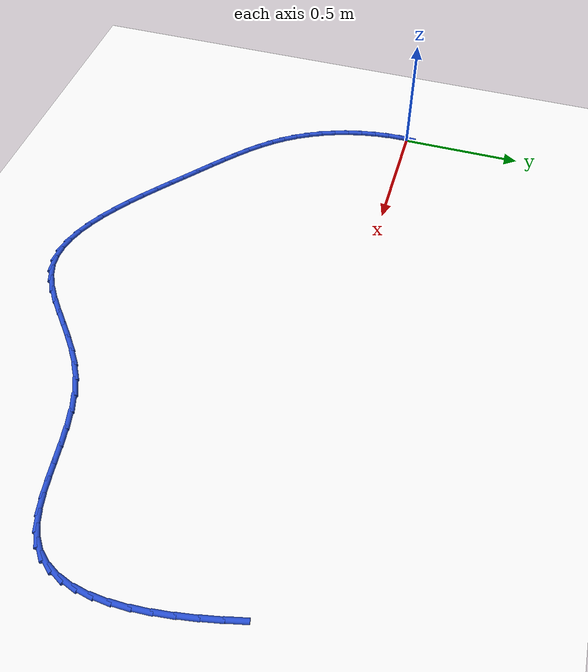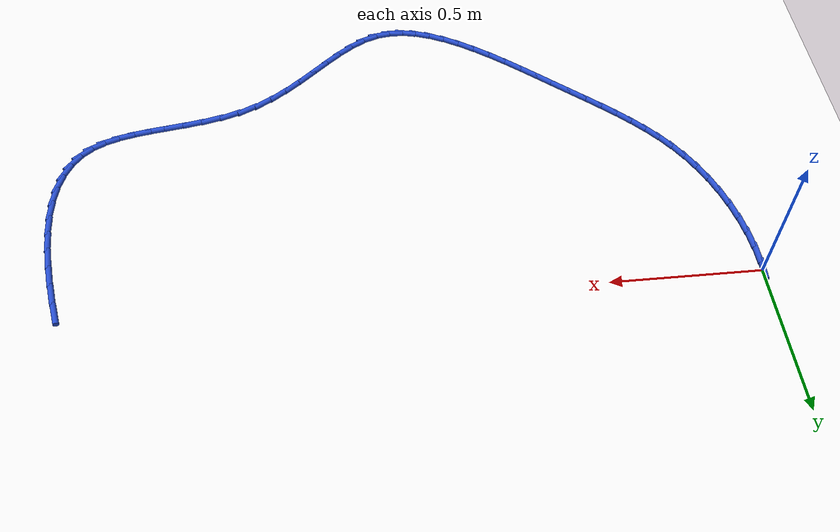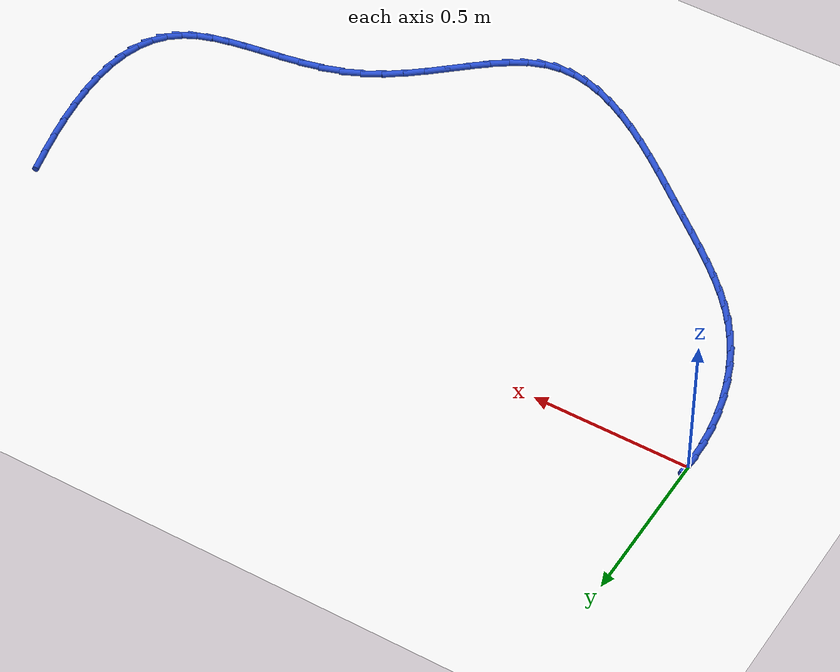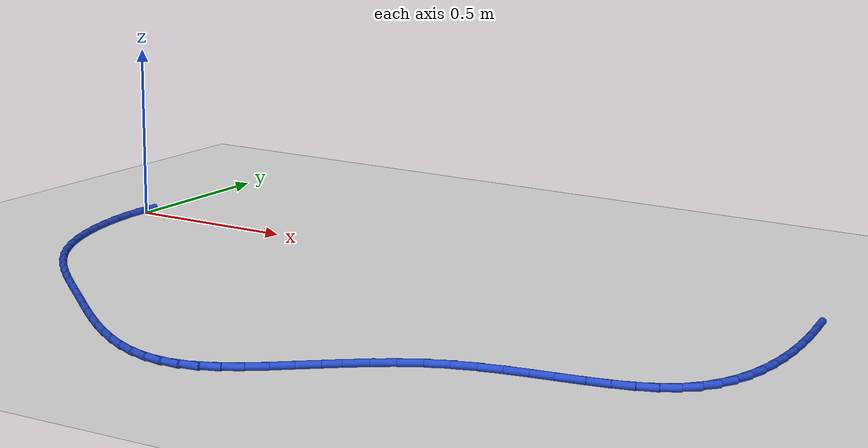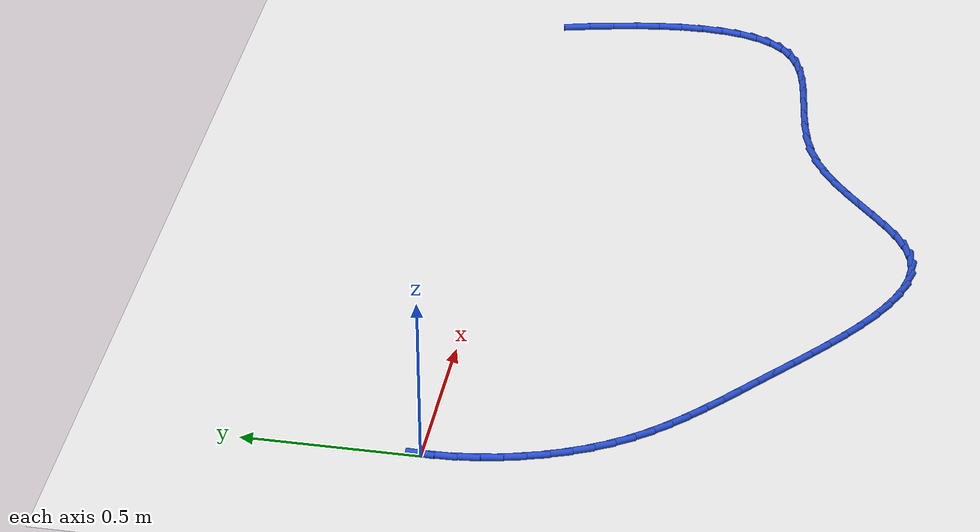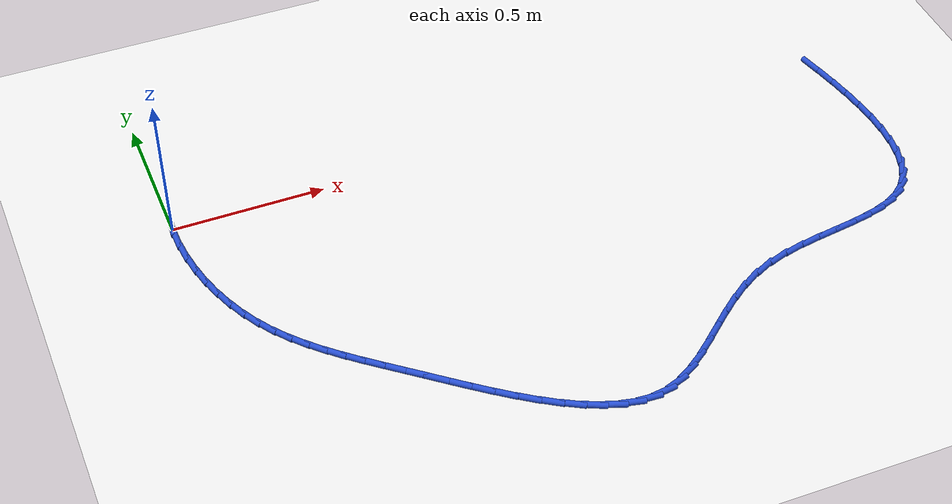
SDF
<sdf version="1.6">
 <world name="default">
  <model name="ground_plane">
   <static>1</static>
   <link name="link">
    <collision name="collision">
     <geometry><plane><normal>0 0 1</normal><size>100 100</size></plane></geometry>
     <surface><friction><ode><mu>100</mu><mu2>50</mu2></ode></friction></surface>
    </collision>
    <visual name="visual">
     <cast_shadows>0</cast_shadows>
     <geometry><plane><normal>0 0 1</normal><size>100 100</size></plane></geometry>
     <material>
      <script><uri>file://media/materials/scripts/gazebo.material</uri><name>Gazebo/WhiteGlow</name></script>
     </material>
    </visual>
   </link>
  </model>
  <model name="line">
   <link name="link_60">
    <pose>2.2438673846446573 -0.038703208460653206 0.01 0 1.57 -1.341991703126801</pose>
    <collision name="collision">
     <geometry><cylinder><radius>0.01</radius><length>0.08</length></cylinder></geometry>
    </collision>
    <visual name="visual">
     <material>
      <script><name>Gazebo/Blue</name><uri>file://media/materials/scripts/gazebo.material</uri></script>
     </material>
     <geometry><cylinder><radius>0.01</radius><length>0.08</length></cylinder></geometry>
    </visual>
   </link>
   <link name="link_61">
    <pose>2.2605468077617537 -0.110324740114451 0.01 0 1.57 -1.3713619405423163</pose>
    <collision name="collision">
     <geometry><cylinder><radius>0.01</radius><length>0.08</length></cylinder></geometry>
    </collision>
    <visual name="visual">
     <material>
      <script><name>Gazebo/Blue</name><uri>file://media/materials/scripts/gazebo.material</uri></script>
     </material>
     <geometry><cylinder><radius>0.01</radius><length>0.08</length></cylinder></geometry>
    </visual>
   </link>
   <link name="link_62">
    <pose>2.2749777125026394 -0.18172200749098166 0.01 0 1.57 -1.4070645537674633</pose>
    <collision name="collision">
     <geometry><cylinder><radius>0.01</radius><length>0.08</length></cylinder></geometry>
    </collision>
    <visual name="visual">
     <material>
      <script><name>Gazebo/Blue</name><uri>file://media/materials/scripts/gazebo.material</uri></script>
     </material>
     <geometry><cylinder><radius>0.01</radius><length>0.08</length></cylinder></geometry>
    </visual>
   </link>
   <link name="link_63">
    <pose>2.286617403558694 -0.2521756026166581 0.01 0 1.57 -1.4506377503673564</pose>
    <collision name="collision">
     <geometry><cylinder><radius>0.01</radius><length>0.08</length></cylinder></geometry>
    </collision>
    <visual name="visual">
     <material>
      <script><name>Gazebo/Blue</name><uri>file://media/materials/scripts/gazebo.material</uri></script>
     </material>
     <geometry><cylinder><radius>0.01</radius><length>0.08</length></cylinder></geometry>
    </visual>
   </link>
   <link name="link_64">
    <pose>2.294923185621299 -0.3209661175178902 0.01 0 1.57 -1.5041985395946258</pose>
    <collision name="collision">
     <geometry><cylinder><radius>0.01</radius><length>0.08</length></cylinder></geometry>
    </collision>
    <visual name="visual">
     <material>
      <script><name>Gazebo/Blue</name><uri>file://media/materials/scripts/gazebo.material</uri></script>
     </material>
     <geometry><cylinder><radius>0.01</radius><length>0.08</length></cylinder></geometry>
    </visual>
   </link>
   <link name="link_65">
    <pose>2.2993523633818356 -0.3873741442210909 0.01 0 1.57 -1.5706402889880422</pose>
    <collision name="collision">
     <geometry><cylinder><radius>0.01</radius><length>0.08</length></cylinder></geometry>
    </collision>
    <visual name="visual">
     <material>
      <script><name>Gazebo/Blue</name><uri>file://media/materials/scripts/gazebo.material</uri></script>
     </material>
     <geometry><cylinder><radius>0.01</radius><length>0.08</length></cylinder></geometry>
    </visual>
   </link>
   <link name="link_66">
    <pose>2.2993622415316843 -0.4506802747526728 0.01 0 1.57 1.4877377710754096</pose>
    <collision name="collision">
     <geometry><cylinder><radius>0.01</radius><length>0.08</length></cylinder></geometry>
    </collision>
    <visual name="visual">
     <material>
      <script><name>Gazebo/Blue</name><uri>file://media/materials/scripts/gazebo.material</uri></script>
     </material>
     <geometry><cylinder><radius>0.01</radius><length>0.08</length></cylinder></geometry>
    </visual>
   </link>
   <link name="link_67">
    <pose>2.2944101247622246 -0.510165101139046 0.01 0 1.57 1.3827283024979578</pose>
    <collision name="collision">
     <geometry><cylinder><radius>0.01</radius><length>0.08</length></cylinder></geometry>
    </collision>
    <visual name="visual">
     <material>
      <script><name>Gazebo/Blue</name><uri>file://media/materials/scripts/gazebo.material</uri></script>
     </material>
     <geometry><cylinder><radius>0.01</radius><length>0.08</length></cylinder></geometry>
    </visual>
   </link>
   <link name="link_68">
    <pose>2.2839533177648397 -0.565109215406623 0.01 0 1.57 1.2500811702750374</pose>
    <collision name="collision">
     <geometry><cylinder><radius>0.01</radius><length>0.08</length></cylinder></geometry>
    </collision>
    <visual name="visual">
     <material>
      <script><name>Gazebo/Blue</name><uri>file://media/materials/scripts/gazebo.material</uri></script>
     </material>
     <geometry><cylinder><radius>0.01</radius><length>0.08</length></cylinder></geometry>
    </visual>
   </link>
   <link name="link_69">
    <pose>2.267449125230909 -0.6147932095818162 0.01 0 1.57 1.0846727875327875</pose>
    <collision name="collision">
     <geometry><cylinder><radius>0.01</radius><length>0.08</length></cylinder></geometry>
    </collision>
    <visual name="visual">
     <material>
      <script><name>Gazebo/Blue</name><uri>file://media/materials/scripts/gazebo.material</uri></script>
     </material>
     <geometry><cylinder><radius>0.01</radius><length>0.08</length></cylinder></geometry>
    </visual>
   </link>
   <link name="link_70">
    <pose>2.244354851851813 -0.6584976756910375 0.01 0 1.57 0.8858799835605161</pose>
    <collision name="collision">
     <geometry><cylinder><radius>0.01</radius><length>0.08</length></cylinder></geometry>
    </collision>
    <visual name="visual">
     <material>
      <script><name>Gazebo/Blue</name><uri>file://media/materials/scripts/gazebo.material</uri></script>
     </material>
     <geometry><cylinder><radius>0.01</radius><length>0.08</length></cylinder></geometry>
    </visual>
   </link>
   <link name="link_71">
    <pose>2.214127802318934 -0.6955032057606977 0.01 0 1.57 0.6633664856925773</pose>
    <collision name="collision">
     <geometry><cylinder><radius>0.01</radius><length>0.08</length></cylinder></geometry>
    </collision>
    <visual name="visual">
     <material>
      <script><name>Gazebo/Blue</name><uri>file://media/materials/scripts/gazebo.material</uri></script>
     </material>
     <geometry><cylinder><radius>0.01</radius><length>0.08</length></cylinder></geometry>
    </visual>
   </link>
   <link name="link_72">
    <pose>2.1762415558418184 -0.7251118118311726 0.01 0 1.57 0.4594481789931547</pose>
    <collision name="collision">
     <geometry><cylinder><radius>0.01</radius><length>0.08</length></cylinder></geometry>
    </collision>
    <visual name="visual">
     <material>
      <script><name>Gazebo/Blue</name><uri>file://media/materials/scripts/gazebo.material</uri></script>
     </material>
     <geometry><cylinder><radius>0.01</radius><length>0.08</length></cylinder></geometry>
    </visual>
   </link>
   <link name="link_73">
    <pose>2.1308770069198135 -0.7475564522988926 0.01 0 1.57 0.3139066812539006</pose>
    <collision name="collision">
     <geometry><cylinder><radius>0.01</radius><length>0.08</length></cylinder></geometry>
    </collision>
    <visual name="visual">
     <material>
      <script><name>Gazebo/Blue</name><uri>file://media/materials/scripts/gazebo.material</uri></script>
     </material>
     <geometry><cylinder><radius>0.01</radius><length>0.08</length></cylinder></geometry>
    </visual>
   </link>
   <link name="link_74">
    <pose>2.079179555245739 -0.7643395372577334 0.01 0 1.57 0.2201679152603716</pose>
    <collision name="collision">
     <geometry><cylinder><radius>0.01</radius><length>0.08</length></cylinder></geometry>
    </collision>
    <visual name="visual">
     <material>
      <script><name>Gazebo/Blue</name><uri>file://media/materials/scripts/gazebo.material</uri></script>
     </material>
     <geometry><cylinder><radius>0.01</radius><length>0.08</length></cylinder></geometry>
    </visual>
   </link>
   <link name="link_75">
    <pose>2.022363868989246 -0.7770546458134955 0.01 0 1.57 0.16708433866745412</pose>
    <collision name="collision">
     <geometry><cylinder><radius>0.01</radius><length>0.08</length></cylinder></geometry>
    </collision>
    <visual name="visual">
     <material>
      <script><name>Gazebo/Blue</name><uri>file://media/materials/scripts/gazebo.material</uri></script>
     </material>
     <geometry><cylinder><radius>0.01</radius><length>0.08</length></cylinder></geometry>
    </visual>
   </link>
   <link name="link_76">
    <pose>1.961644616319979 -0.7872953570719785 0.01 0 1.57 0.14655505623227932</pose>
    <collision name="collision">
     <geometry><cylinder><radius>0.01</radius><length>0.08</length></cylinder></geometry>
    </collision>
    <visual name="visual">
     <material>
      <script><name>Gazebo/Blue</name><uri>file://media/materials/scripts/gazebo.material</uri></script>
     </material>
     <geometry><cylinder><radius>0.01</radius><length>0.08</length></cylinder></geometry>
    </visual>
   </link>
   <link name="link_77">
    <pose>1.8982364654075863 -0.7966552501389825 0.01 0 1.57 0.15401537383145902</pose>
    <collision name="collision">
     <geometry><cylinder><radius>0.01</radius><length>0.08</length></cylinder></geometry>
    </collision>
    <visual name="visual">
     <material>
      <script><name>Gazebo/Blue</name><uri>file://media/materials/scripts/gazebo.material</uri></script>
     </material>
     <geometry><cylinder><radius>0.01</radius><length>0.08</length></cylinder></geometry>
    </visual>
   </link>
   <link name="link_78">
    <pose>1.8333540844217153 -0.806727904120308 0.01 0 1.57 0.18779194701513083</pose>
    <collision name="collision">
     <geometry><cylinder><radius>0.01</radius><length>0.08</length></cylinder></geometry>
    </collision>
    <visual name="visual">
     <material>
      <script><name>Gazebo/Blue</name><uri>file://media/materials/scripts/gazebo.material</uri></script>
     </material>
     <geometry><cylinder><radius>0.01</radius><length>0.08</length></cylinder></geometry>
    </visual>
   </link>
   <link name="link_79">
    <pose>1.768212141532015 -0.819106898121755 0.01 0 1.57 0.24838057876603725</pose>
    <collision name="collision">
     <geometry><cylinder><radius>0.01</radius><length>0.08</length></cylinder></geometry>
    </collision>
    <visual name="visual">
     <material>
      <script><name>Gazebo/Blue</name><uri>file://media/materials/scripts/gazebo.material</uri></script>
     </material>
     <geometry><cylinder><radius>0.01</radius><length>0.08</length></cylinder></geometry>
    </visual>
   </link>
   <link name="link_80">
    <pose>1.704025304908131 -0.8353858112491235 0.01 0 1.57 0.33762889818781977</pose>
    <collision name="collision">
     <geometry><cylinder><radius>0.01</radius><length>0.08</length></cylinder></geometry>
    </collision>
    <visual name="visual">
     <material>
      <script><name>Gazebo/Blue</name><uri>file://media/materials/scripts/gazebo.material</uri></script>
     </material>
     <geometry><cylinder><radius>0.01</radius><length>0.08</length></cylinder></geometry>
    </visual>
   </link>
   <link name="link_81">
    <pose>1.6420082427197111 -0.857158222608214 0.01 0 1.57 0.4545103759657198</pose>
    <collision name="collision">
     <geometry><cylinder><radius>0.01</radius><length>0.08</length></cylinder></geometry>
    </collision>
    <visual name="visual">
     <material>
      <script><name>Gazebo/Blue</name><uri>file://media/materials/scripts/gazebo.material</uri></script>
     </material>
     <geometry><cylinder><radius>0.01</radius><length>0.08</length></cylinder></geometry>
    </visual>
   </link>
   <link name="link_82">
    <pose>1.5832899417243025 -0.8858497511353498 0.01 0 1.57 0.5646626037715133</pose>
    <collision name="collision">
     <geometry><cylinder><radius>0.01</radius><length>0.08</length></cylinder></geometry>
    </collision>
    <visual name="visual">
     <material>
      <script><name>Gazebo/Blue</name><uri>file://media/materials/scripts/gazebo.material</uri></script>
     </material>
     <geometry><cylinder><radius>0.01</radius><length>0.08</length></cylinder></geometry>
    </visual>
   </link>
   <link name="link_83">
    <pose>1.527979569509547 -0.920886877372531 0.01 0 1.57 0.6453277542079172</pose>
    <collision name="collision">
     <geometry><cylinder><radius>0.01</radius><length>0.08</length></cylinder></geometry>
    </collision>
    <visual name="visual">
     <material>
      <script><name>Gazebo/Blue</name><uri>file://media/materials/scripts/gazebo.material</uri></script>
     </material>
     <geometry><cylinder><radius>0.01</radius><length>0.08</length></cylinder></geometry>
    </visual>
   </link>
   <link name="link_84">
    <pose>1.4755168787958552 -0.9603838365124763 0.01 0 1.57 0.6973861848090829</pose>
    <collision name="collision">
     <geometry><cylinder><radius>0.01</radius><length>0.08</length></cylinder></geometry>
    </collision>
    <visual name="visual">
     <material>
      <script><name>Gazebo/Blue</name><uri>file://media/materials/scripts/gazebo.material</uri></script>
     </material>
     <geometry><cylinder><radius>0.01</radius><length>0.08</length></cylinder></geometry>
    </visual>
   </link>
   <link name="link_85">
    <pose>1.4253299387043252 -1.002431960538533 0.01 0 1.57 0.7219508965556406</pose>
    <collision name="collision">
     <geometry><cylinder><radius>0.01</radius><length>0.08</length></cylinder></geometry>
    </collision>
    <visual name="visual">
     <material>
      <script><name>Gazebo/Blue</name><uri>file://media/materials/scripts/gazebo.material</uri></script>
     </material>
     <geometry><cylinder><radius>0.01</radius><length>0.08</length></cylinder></geometry>
    </visual>
   </link>
   <link name="link_86">
    <pose>1.3768468183560565 -1.0451225814340475 0.01 0 1.57 0.718735764886161</pose>
    <collision name="collision">
     <geometry><cylinder><radius>0.01</radius><length>0.08</length></cylinder></geometry>
    </collision>
    <visual name="visual">
     <material>
      <script><name>Gazebo/Blue</name><uri>file://media/materials/scripts/gazebo.material</uri></script>
     </material>
     <geometry><cylinder><radius>0.01</radius><length>0.08</length></cylinder></geometry>
    </visual>
   </link>
   <link name="link_87">
    <pose>1.3294955868721468 -1.0865470311823666 0.01 0 1.57 0.6852920642416706</pose>
    <collision name="collision">
     <geometry><cylinder><radius>0.01</radius><length>0.08</length></cylinder></geometry>
    </collision>
    <visual name="visual">
     <material>
      <script><name>Gazebo/Blue</name><uri>file://media/materials/scripts/gazebo.material</uri></script>
     </material>
     <geometry><cylinder><radius>0.01</radius><length>0.08</length></cylinder></geometry>
    </visual>
   </link>
   <link name="link_88">
    <pose>1.2827043133736942 -1.124796641766837 0.01 0 1.57 0.6164933055429379</pose>
    <collision name="collision">
     <geometry><cylinder><radius>0.01</radius><length>0.08</length></cylinder></geometry>
    </collision>
    <visual name="visual">
     <material>
      <script><name>Gazebo/Blue</name><uri>file://media/materials/scripts/gazebo.material</uri></script>
     </material>
     <geometry><cylinder><radius>0.01</radius><length>0.08</length></cylinder></geometry>
    </visual>
   </link>
   <link name="link_89">
    <pose>1.2359010669817971 -1.1579627451708066 0.01 0 1.57 0.5046397542681064</pose>
    <collision name="collision">
     <geometry><cylinder><radius>0.01</radius><length>0.08</length></cylinder></geometry>
    </collision>
    <visual name="visual">
     <material>
      <script><name>Gazebo/Blue</name><uri>file://media/materials/scripts/gazebo.material</uri></script>
     </material>
     <geometry><cylinder><radius>0.01</radius><length>0.08</length></cylinder></geometry>
    </visual>
   </link>
   <link name="link_90">
    <pose>1.1885139168175547 -1.1841366733776204 0.01 0 1.57 0.3418597472828299</pose>
    <collision name="collision">
     <geometry><cylinder><radius>0.01</radius><length>0.08</length></cylinder></geometry>
    </collision>
    <visual name="visual">
     <material>
      <script><name>Gazebo/Blue</name><uri>file://media/materials/scripts/gazebo.material</uri></script>
     </material>
     <geometry><cylinder><radius>0.01</radius><length>0.08</length></cylinder></geometry>
    </visual>
   </link>
   <link name="link_91">
    <pose>1.139970932002065 -1.2014097583706267 0.01 0 1.57 0.13610806843554027</pose>
    <collision name="collision">
     <geometry><cylinder><radius>0.01</radius><length>0.08</length></cylinder></geometry>
    </collision>
    <visual name="visual">
     <material>
      <script><name>Gazebo/Blue</name><uri>file://media/materials/scripts/gazebo.material</uri></script>
     </material>
     <geometry><cylinder><radius>0.01</radius><length>0.08</length></cylinder></geometry>
    </visual>
   </link>
   <link name="link_92">
    <pose>1.0898143798747544 -1.2082789404095917 0.01 0 1.57 -0.059251173935481766</pose>
    <collision name="collision">
     <geometry><cylinder><radius>0.01</radius><length>0.08</length></cylinder></geometry>
    </collision>
    <visual name="visual">
     <material>
      <script><name>Gazebo/Blue</name><uri>file://media/materials/scripts/gazebo.material</uri></script>
     </material>
     <geometry><cylinder><radius>0.01</radius><length>0.08</length></cylinder></geometry>
    </visual>
   </link>
   <link name="link_93">
    <pose>1.03814189176787 -1.2052136969375393 0.01 0 1.57 -0.2217447988554606</pose>
    <collision name="collision">
     <geometry><cylinder><radius>0.01</radius><length>0.08</length></cylinder></geometry>
    </collision>
    <visual name="visual">
     <material>
      <script><name>Gazebo/Blue</name><uri>file://media/materials/scripts/gazebo.material</uri></script>
     </material>
     <geometry><cylinder><radius>0.01</radius><length>0.08</length></cylinder></geometry>
    </visual>
   </link>
   <link name="link_94">
    <pose>0.9852196795830097 -1.1932822684532782 0.01 0 1.57 -0.35085301350519044</pose>
    <collision name="collision">
     <geometry><cylinder><radius>0.01</radius><length>0.08</length></cylinder></geometry>
    </collision>
    <visual name="visual">
     <material>
      <script><name>Gazebo/Blue</name><uri>file://media/materials/scripts/gazebo.material</uri></script>
     </material>
     <geometry><cylinder><radius>0.01</radius><length>0.08</length></cylinder></geometry>
    </visual>
   </link>
   <link name="link_95">
    <pose>0.9313139935378971 -1.1735530315465175 0.01 0 1.57 -0.45107998919902914</pose>
    <collision name="collision">
     <geometry><cylinder><radius>0.01</radius><length>0.08</length></cylinder></geometry>
    </collision>
    <visual name="visual">
     <material>
      <script><name>Gazebo/Blue</name><uri>file://media/materials/scripts/gazebo.material</uri></script>
     </material>
     <geometry><cylinder><radius>0.01</radius><length>0.08</length></cylinder></geometry>
    </visual>
   </link>
   <link name="link_96">
    <pose>0.8766910838502552 -1.1470943628069665 0.01 0 1.57 -0.5279835691740451</pose>
    <collision name="collision">
     <geometry><cylinder><radius>0.01</radius><length>0.08</length></cylinder></geometry>
    </collision>
    <visual name="visual">
     <material>
      <script><name>Gazebo/Blue</name><uri>file://media/materials/scripts/gazebo.material</uri></script>
     </material>
     <geometry><cylinder><radius>0.01</radius><length>0.08</length></cylinder></geometry>
    </visual>
   </link>
   <link name="link_97">
    <pose>0.8216172007378094 -1.114974638824336 0.01 0 1.57 -0.5864139604886838</pose>
    <collision name="collision">
     <geometry><cylinder><radius>0.01</radius><length>0.08</length></cylinder></geometry>
    </collision>
    <visual name="visual">
     <material>
      <script><name>Gazebo/Blue</name><uri>file://media/materials/scripts/gazebo.material</uri></script>
     </material>
     <geometry><cylinder><radius>0.01</radius><length>0.08</length></cylinder></geometry>
    </visual>
   </link>
   <link name="link_98">
    <pose>0.7663585944182837 -1.078262236188335 0.01 0 1.57 -0.6300743479211686</pose>
    <collision name="collision">
     <geometry><cylinder><radius>0.01</radius><length>0.08</length></cylinder></geometry>
    </collision>
    <visual name="visual">
     <material>
      <script><name>Gazebo/Blue</name><uri>file://media/materials/scripts/gazebo.material</uri></script>
     </material>
     <geometry><cylinder><radius>0.01</radius><length>0.08</length></cylinder></geometry>
    </visual>
   </link>
   <link name="link_99">
    <pose>0.7111815151094012 -1.0380255314886735 0.01 0 1.57 -0.661584062951534</pose>
    <collision name="collision">
     <geometry><cylinder><radius>0.01</radius><length>0.08</length></cylinder></geometry>
    </collision>
    <visual name="visual">
     <material>
      <script><name>Gazebo/Blue</name><uri>file://media/materials/scripts/gazebo.material</uri></script>
     </material>
     <geometry><cylinder><radius>0.01</radius><length>0.08</length></cylinder></geometry>
    </visual>
   </link>
   <link name="link_100">
    <pose>0.656352213028886 -0.9953329013150608 0.01 0 1.57 -0.682652756974047</pose>
    <collision name="collision">
     <geometry><cylinder><radius>0.01</radius><length>0.08</length></cylinder></geometry>
    </collision>
    <visual name="visual">
     <material>
      <script><name>Gazebo/Blue</name><uri>file://media/materials/scripts/gazebo.material</uri></script>
     </material>
     <geometry><cylinder><radius>0.01</radius><length>0.08</length></cylinder></geometry>
    </visual>
   </link>
   <link name="link_101">
    <pose>0.6021369383944631 -0.951252722257207 0.01 0 1.57 -0.6942237499108425</pose>
    <collision name="collision">
     <geometry><cylinder><radius>0.01</radius><length>0.08</length></cylinder></geometry>
    </collision>
    <visual name="visual">
     <material>
      <script><name>Gazebo/Blue</name><uri>file://media/materials/scripts/gazebo.material</uri></script>
     </material>
     <geometry><cylinder><radius>0.01</radius><length>0.08</length></cylinder></geometry>
    </visual>
   </link>
   <link name="link_102">
    <pose>0.548801941423856 -0.906853370904822 0.01 0 1.57 -0.6965430045283771</pose>
    <collision name="collision">
     <geometry><cylinder><radius>0.01</radius><length>0.08</length></cylinder></geometry>
    </collision>
    <visual name="visual">
     <material>
      <script><name>Gazebo/Blue</name><uri>file://media/materials/scripts/gazebo.material</uri></script>
     </material>
     <geometry><cylinder><radius>0.01</radius><length>0.08</length></cylinder></geometry>
    </visual>
   </link>
   <link name="link_103">
    <pose>0.4966134705409163 -0.8632031449840187 0.01 0 1.57 -0.6929937701871731</pose>
    <collision name="collision">
     <geometry><cylinder><radius>0.01</radius><length>0.08</length></cylinder></geometry>
    </collision>
    <visual name="visual">
     <material>
      <script><name>Gazebo/Blue</name><uri>file://media/materials/scripts/gazebo.material</uri></script>
     </material>
     <geometry><cylinder><radius>0.01</radius><length>0.08</length></cylinder></geometry>
    </visual>
   </link>
   <link name="link_104">
    <pose>0.445830113941987 -0.8210335773944745 0.01 0 1.57 -0.6960636824489481</pose>
    <collision name="collision">
     <geometry><cylinder><radius>0.01</radius><length>0.08</length></cylinder></geometry>
    </collision>
    <visual name="visual">
     <material>
      <script><name>Gazebo/Blue</name><uri>file://media/materials/scripts/gazebo.material</uri></script>
     </material>
     <geometry><cylinder><radius>0.01</radius><length>0.08</length></cylinder></geometry>
    </visual>
   </link>
   <link name="link_105">
    <pose>0.39668527605741233 -0.779969052902641 0.01 0 1.57 -0.7090919933823355</pose>
    <collision name="collision">
     <geometry><cylinder><radius>0.01</radius><length>0.08</length></cylinder></geometry>
    </collision>
    <visual name="visual">
     <material>
      <script><name>Gazebo/Blue</name><uri>file://media/materials/scripts/gazebo.material</uri></script>
     </material>
     <geometry><cylinder><radius>0.01</radius><length>0.08</length></cylinder></geometry>
    </visual>
   </link>
   <link name="link_106">
    <pose>0.34940719366213363 -0.7394067718248434 0.01 0 1.57 -0.7327913333961104</pose>
    <collision name="collision">
     <geometry><cylinder><radius>0.01</radius><length>0.08</length></cylinder></geometry>
    </collision>
    <visual name="visual">
     <material>
      <script><name>Gazebo/Blue</name><uri>file://media/materials/scripts/gazebo.material</uri></script>
     </material>
     <geometry><cylinder><radius>0.01</radius><length>0.08</length></cylinder></geometry>
    </visual>
   </link>
   <link name="link_107">
    <pose>0.30422410353109286 -0.698743934477406 0.01 0 1.57 -0.7676659872051794</pose>
    <collision name="collision">
     <geometry><cylinder><radius>0.01</radius><length>0.08</length></cylinder></geometry>
    </collision>
    <visual name="visual">
     <material>
      <script><name>Gazebo/Blue</name><uri>file://media/materials/scripts/gazebo.material</uri></script>
     </material>
     <geometry><cylinder><radius>0.01</radius><length>0.08</length></cylinder></geometry>
    </visual>
   </link>
   <link name="link_108">
    <pose>0.26136424243923106 -0.6573777411766527 0.01 0 1.57 -0.8138784390679333</pose>
    <collision name="collision">
     <geometry><cylinder><radius>0.01</radius><length>0.08</length></cylinder></geometry>
    </collision>
    <visual name="visual">
     <material>
      <script><name>Gazebo/Blue</name><uri>file://media/materials/scripts/gazebo.material</uri></script>
     </material>
     <geometry><cylinder><radius>0.01</radius><length>0.08</length></cylinder></geometry>
    </visual>
   </link>
   <link name="link_109">
    <pose>0.22105584716149135 -0.6147053922389096 0.01 0 1.57 -0.8710801108680204</pose>
    <collision name="collision">
     <geometry><cylinder><radius>0.01</radius><length>0.08</length></cylinder></geometry>
    </collision>
    <visual name="visual">
     <material>
      <script><name>Gazebo/Blue</name><uri>file://media/materials/scripts/gazebo.material</uri></script>
     </material>
     <geometry><cylinder><radius>0.01</radius><length>0.08</length></cylinder></geometry>
    </visual>
   </link>
   <link name="link_110">
    <pose>0.18352715447281498 -0.5701240879805008 0.01 0 1.57 -0.9382430053649731</pose>
    <collision name="collision">
     <geometry><cylinder><radius>0.01</radius><length>0.08</length></cylinder></geometry>
    </collision>
    <visual name="visual">
     <material>
      <script><name>Gazebo/Blue</name><uri>file://media/materials/scripts/gazebo.material</uri></script>
     </material>
     <geometry><cylinder><radius>0.01</radius><length>0.08</length></cylinder></geometry>
    </visual>
   </link>
   <link name="link_111">
    <pose>0.14900640114814367 -0.5230310287177511 0.01 0 1.57 -1.0132750849217682</pose>
    <collision name="collision">
     <geometry><cylinder><radius>0.01</radius><length>0.08</length></cylinder></geometry>
    </collision>
    <visual name="visual">
     <material>
      <script><name>Gazebo/Blue</name><uri>file://media/materials/scripts/gazebo.material</uri></script>
     </material>
     <geometry><cylinder><radius>0.01</radius><length>0.08</length></cylinder></geometry>
    </visual>
   </link>
   <link name="link_112">
    <pose>0.11771906369603471 -0.47285100229093013 0.01 0 1.57 -1.0887795257526742</pose>
    <collision name="collision">
     <geometry><cylinder><radius>0.01</radius><length>0.08</length></cylinder></geometry>
    </collision>
    <visual name="visual">
     <material>
      <script><name>Gazebo/Blue</name><uri>file://media/materials/scripts/gazebo.material</uri></script>
     </material>
     <geometry><cylinder><radius>0.01</radius><length>0.08</length></cylinder></geometry>
    </visual>
   </link>
   <link name="link_113">
    <pose>0.08983594494561584 -0.41955523345273854 0.01 0 1.57 -1.1601113320885637</pose>
    <collision name="collision">
     <geometry><cylinder><radius>0.01</radius><length>0.08</length></cylinder></geometry>
    </collision>
    <visual name="visual">
     <material>
      <script><name>Gazebo/Blue</name><uri>file://media/materials/scripts/gazebo.material</uri></script>
     </material>
     <geometry><cylinder><radius>0.01</radius><length>0.08</length></cylinder></geometry>
    </visual>
   </link>
   <link name="link_114">
    <pose>0.06547766326167417 -0.3636165163404667 0.01 0 1.57 -1.2282585978800868</pose>
    <collision name="collision">
     <geometry><cylinder><radius>0.01</radius><length>0.08</length></cylinder></geometry>
    </collision>
    <visual name="visual">
     <material>
      <script><name>Gazebo/Blue</name><uri>file://media/materials/scripts/gazebo.material</uri></script>
     </material>
     <geometry><cylinder><radius>0.01</radius><length>0.08</length></cylinder></geometry>
    </visual>
   </link>
   <link name="link_115">
    <pose>0.044762976652172964 -0.30552623845570054 0.01 0 1.57 -1.2943424097575962</pose>
    <collision name="collision">
     <geometry><cylinder><radius>0.01</radius><length>0.08</length></cylinder></geometry>
    </collision>
    <visual name="visual">
     <material>
      <script><name>Gazebo/Blue</name><uri>file://media/materials/scripts/gazebo.material</uri></script>
     </material>
     <geometry><cylinder><radius>0.01</radius><length>0.08</length></cylinder></geometry>
    </visual>
   </link>
   <link name="link_116">
    <pose>0.02781064312507623 -0.24577578730002836 0.01 0 1.57 -1.359434629151231</pose>
    <collision name="collision">
     <geometry><cylinder><radius>0.01</radius><length>0.08</length></cylinder></geometry>
    </collision>
    <visual name="visual">
     <material>
      <script><name>Gazebo/Blue</name><uri>file://media/materials/scripts/gazebo.material</uri></script>
     </material>
     <geometry><cylinder><radius>0.01</radius><length>0.08</length></cylinder></geometry>
    </visual>
   </link>
   <link name="link_117">
    <pose>0.014739420688347096 -0.1848565503750357 0.01 0 1.57 -1.4245771010672905</pose>
    <collision name="collision">
     <geometry><cylinder><radius>0.01</radius><length>0.08</length></cylinder></geometry>
    </collision>
    <visual name="visual">
     <material>
      <script><name>Gazebo/Blue</name><uri>file://media/materials/scripts/gazebo.material</uri></script>
     </material>
     <geometry><cylinder><radius>0.01</radius><length>0.08</length></cylinder></geometry>
    </visual>
   </link>
   <link name="link_118">
    <pose>0.0056680673499490495 -0.1232599151823092 0.01 0 1.57 -1.490803672377502</pose>
    <collision name="collision">
     <geometry><cylinder><radius>0.01</radius><length>0.08</length></cylinder></geometry>
    </collision>
    <visual name="visual">
     <material>
      <script><name>Gazebo/Blue</name><uri>file://media/materials/scripts/gazebo.material</uri></script>
     </material>
     <geometry><cylinder><radius>0.01</radius><length>0.08</length></cylinder></geometry>
    </visual>
   </link>
   <link name="link_119">
    <pose>0.0007153411178454916 -0.06147726922343457 0.01 0 1.57 -1.559160988313424</pose>
    <collision name="collision">
     <geometry><cylinder><radius>0.01</radius><length>0.08</length></cylinder></geometry>
    </collision>
    <visual name="visual">
     <material>
      <script><name>Gazebo/Blue</name><uri>file://media/materials/scripts/gazebo.material</uri></script>
     </material>
     <geometry><cylinder><radius>0.01</radius><length>0.08</length></cylinder></geometry>
    </visual>
   </link>
   <link name="link_120">
    <pose>1.0408340855860843e-17 -1.3877787807814457e-17 0.01 0 1.57 1.5108686362926536</pose>
    <collision name="collision">
     <geometry><cylinder><radius>0.01</radius><length>0.08</length></cylinder></geometry>
    </collision>
    <visual name="visual">
     <material>
      <script><name>Gazebo/Blue</name><uri>file://media/materials/scripts/gazebo.material</uri></script>
     </material>
     <geometry><cylinder><radius>0.01</radius><length>0.08</length></cylinder></geometry>
    </visual>
   </link>
  </model>
 </world>
</sdf>
